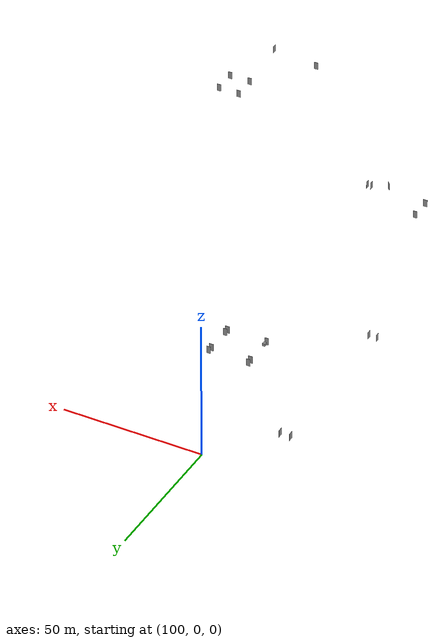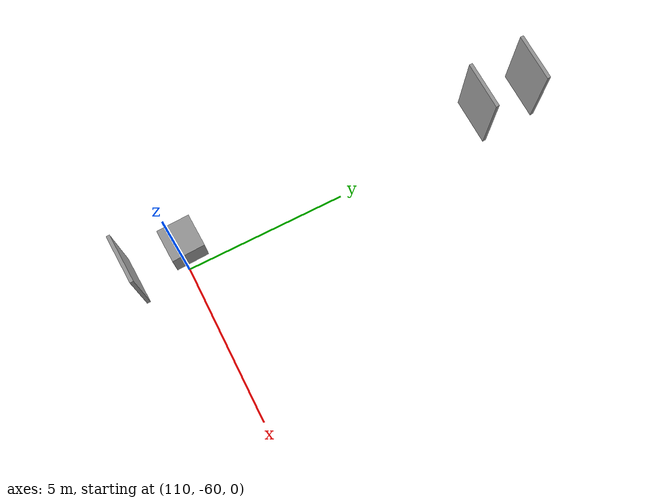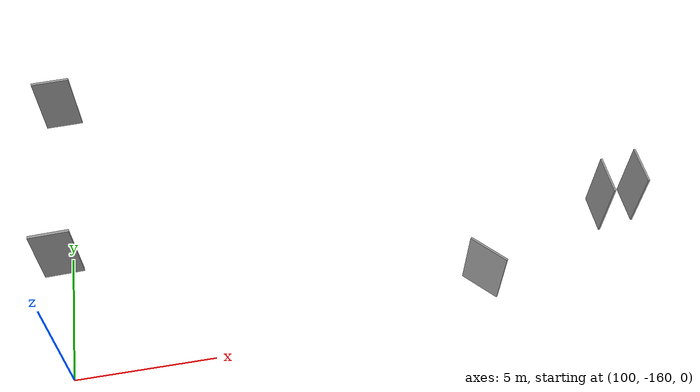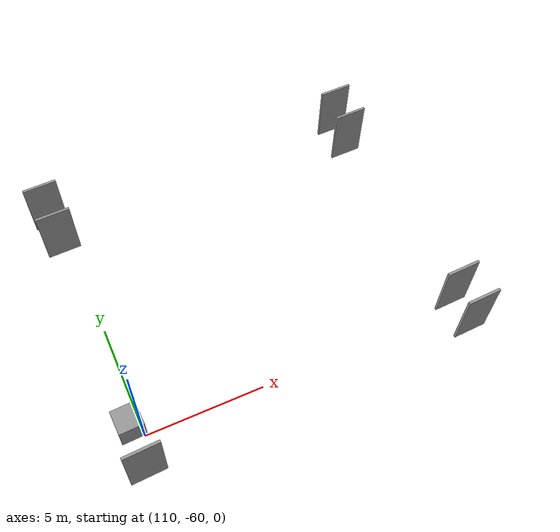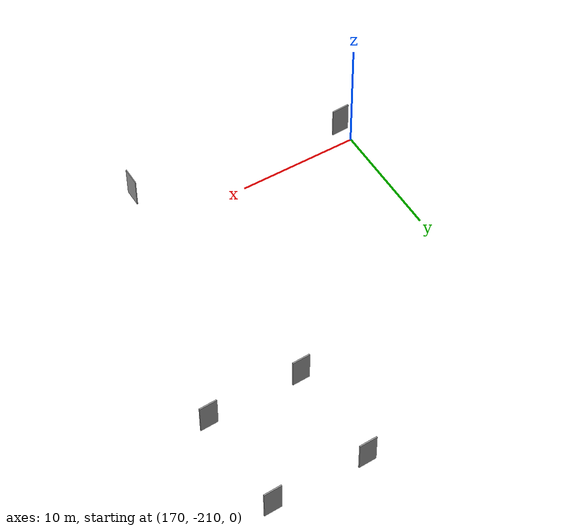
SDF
<sdf version="1.7">
 <world name="default">
  <plugin name="ros_interface_plugin" filename="librotors_gazebo_ros_interface_plugin.so"/>
  <light name="sun" type="directional">
   <pose>0 0 10 0 -0 0</pose>
   <diffuse>0.8 0.8 0.8 1</diffuse>
   <specular>0.2 0.2 0.2 1</specular>
   <attenuation>
    <range>1000</range>
    <constant>0.9</constant>
    <linear>0.01</linear>
    <quadratic>0.001</quadratic>
   </attenuation>
   <direction>-0.5 0.1 -0.9</direction>
   <spot><inner_angle>0</inner_angle><outer_angle>0</outer_angle><falloff>0</falloff></spot>
  </light>
  <spherical_coordinates>
   <surface_model>EARTH_WGS84</surface_model>
   <latitude_deg>47.3667</latitude_deg>
   <longitude_deg>8.55</longitude_deg>
   <elevation>500</elevation>
   <heading_deg>0</heading_deg>
  </spherical_coordinates>
  <physics type="ode">
   <ode>
    <solver>
     <type>quick</type>
     <iters>1000</iters>
     <sor>1.3</sor>
     <use_dynamic_moi_rescaling>0</use_dynamic_moi_rescaling>
    </solver>
    <constraints>
     <cfm>0</cfm>
     <erp>0.2</erp>
     <contact_max_correcting_vel>100</contact_max_correcting_vel>
     <contact_surface_layer>0.001</contact_surface_layer>
    </constraints>
   </ode>
   <max_step_size>0.005</max_step_size>
   <real_time_factor>1</real_time_factor>
   <real_time_update_rate>200</real_time_update_rate>
   <gravity>0 0 -9.8</gravity>
  </physics>
  <gravity>0 0 -9.8</gravity>
  <magnetic_field>6e-06 2.3e-05 -4.2e-05</magnetic_field>
  <atmosphere type="adiabatic"/>
  <scene><ambient>0.4 0.4 0.4 1</ambient><background>0.7 0.7 0.7 1</background><shadows>1</shadows></scene>
  <model name="unit_box_clone">
   <static>1</static>
   <pose>79.1075 -20.5241 1.29627 0 -0 0.01153</pose>
   <link name="link">
    <inertial>
     <mass>1</mass>
     <inertia>
      <ixx>0.166667</ixx>
      <ixy>0</ixy>
      <ixz>0</ixz>
      <iyy>0.166667</iyy>
      <iyz>0</iyz>
      <izz>0.166667</izz>
     </inertia>
    </inertial>
    <collision name="collision"><geometry><box><size>0.094065 2.00749 2.60868</size></box></geometry></collision>
    <visual name="visual">
     <geometry><box><size>0.094065 2.00749 2.60868</size></box></geometry>
     <material>
      <script><name>Gazebo/Grey</name><uri>file://media/materials/scripts/gazebo.material</uri></script>
     </material>
    </visual>
   </link>
  </model>
  <model name="unit_box_0_clone">
   <static>1</static>
   <pose>79.1307 -80.4884 1.2892 0 -0 0.003488</pose>
   <link name="link">
    <inertial>
     <mass>1</mass>
     <inertia>
      <ixx>0.166667</ixx>
      <ixy>0</ixy>
      <ixz>0</ixz>
      <iyy>0.166667</iyy>
      <iyz>0</iyz>
      <izz>0.166667</izz>
     </inertia>
    </inertial>
    <collision name="collision"><geometry><box><size>0.074842 1.51178 2.59455</size></box></geometry></collision>
    <visual name="visual">
     <geometry><box><size>0.074842 1.51178 2.59455</size></box></geometry>
     <material>
      <script><name>Gazebo/Grey</name><uri>file://media/materials/scripts/gazebo.material</uri></script>
     </material>
    </visual>
   </link>
  </model>
  <model name="unit_box_clone_clone">
   <static>1</static>
   <pose>82.9069 -20.5235 1.29627 0 -0 0.034755</pose>
   <link name="link">
    <inertial>
     <mass>1</mass>
     <inertia>
      <ixx>0.166667</ixx>
      <ixy>0</ixy>
      <ixz>0</ixz>
      <iyy>0.166667</iyy>
      <iyz>0</iyz>
      <izz>0.166667</izz>
     </inertia>
    </inertial>
    <collision name="collision"><geometry><box><size>0.094065 2.00749 2.60868</size></box></geometry></collision>
    <visual name="visual">
     <geometry><box><size>0.094065 2.00749 2.60868</size></box></geometry>
     <material>
      <script><name>Gazebo/Grey</name><uri>file://media/materials/scripts/gazebo.material</uri></script>
     </material>
    </visual>
   </link>
  </model>
  <model name="unit_box_0_clone_clone">
   <static>1</static>
   <pose>82.1922 -80.4853 1.28925 0 0.001222 -0.002902</pose>
   <link name="link">
    <inertial>
     <mass>1</mass>
     <inertia>
      <ixx>0.166667</ixx>
      <ixy>0</ixy>
      <ixz>0</ixz>
      <iyy>0.166667</iyy>
      <iyz>0</iyz>
      <izz>0.166667</izz>
     </inertia>
    </inertial>
    <collision name="collision"><geometry><box><size>0.074842 1.51178 2.59455</size></box></geometry></collision>
    <visual name="visual">
     <geometry><box><size>0.074842 1.51178 2.59455</size></box></geometry>
     <material>
      <script><name>Gazebo/Grey</name><uri>file://media/materials/scripts/gazebo.material</uri></script>
     </material>
    </visual>
   </link>
  </model>
  <model name="unit_box_0">
   <static>1</static>
   <pose>109.58 -59.8233 1.33703 8.4e-05 -0.000111 0.036381</pose>
   <link name="link">
    <inertial>
     <mass>1</mass>
     <inertia>
      <ixx>0.166667</ixx>
      <ixy>0</ixy>
      <ixz>0</ixz>
      <iyy>0.166667</iyy>
      <iyz>0</iyz>
      <izz>0.166667</izz>
     </inertia>
    </inertial>
    <collision name="collision"><geometry><box><size>1 1 1</size></box></geometry></collision>
    <visual name="visual">
     <geometry><box><size>1 1 1</size></box></geometry>
     <material>
      <script><name>Gazebo/Grey</name><uri>file://media/materials/scripts/gazebo.material</uri></script>
     </material>
    </visual>
   </link>
  </model>
  <model name="unit_box_0_clone_0">
   <static>1</static>
   <pose>109.63 -61.5144 1.33689 -5e-06 -0.000123 0.037531</pose>
   <link name="link">
    <inertial>
     <mass>1</mass>
     <inertia>
      <ixx>0.166667</ixx>
      <ixy>0</ixy>
      <ixz>0</ixz>
      <iyy>0.166667</iyy>
      <iyz>0</iyz>
      <izz>0.166667</izz>
     </inertia>
    </inertial>
    <collision name="collision"><geometry><box><size>1.47196 0.107378 2.69003</size></box></geometry></collision>
    <visual name="visual">
     <geometry><box><size>1.47196 0.107378 2.69003</size></box></geometry>
     <material>
      <script><name>Gazebo/Grey</name><uri>file://media/materials/scripts/gazebo.material</uri></script>
     </material>
    </visual>
   </link>
  </model>
  <model name="unit_box_0_clone_1">
   <static>1</static>
   <pose>109.654 -50.3071 1.33701 -0.001791 4.9e-05 0.037842</pose>
   <link name="link">
    <inertial>
     <mass>1</mass>
     <inertia>
      <ixx>0.166667</ixx>
      <ixy>0</ixy>
      <ixz>0</ixz>
      <iyy>0.166667</iyy>
      <iyz>0</iyz>
      <izz>0.166667</izz>
     </inertia>
    </inertial>
    <collision name="collision"><geometry><box><size>1.47196 0.107378 2.69003</size></box></geometry></collision>
    <visual name="visual">
     <geometry><box><size>1.47196 0.107378 2.69003</size></box></geometry>
     <material>
      <script><name>Gazebo/Grey</name><uri>file://media/materials/scripts/gazebo.material</uri></script>
     </material>
    </visual>
   </link>
  </model>
  <model name="unit_box_0_clone_2">
   <static>1</static>
   <pose>109.557 -48.586 1.33704 8.4e-05 -0.000111 0.036381</pose>
   <link name="link">
    <inertial>
     <mass>1</mass>
     <inertia>
      <ixx>0.166667</ixx>
      <ixy>0</ixy>
      <ixz>0</ixz>
      <iyy>0.166667</iyy>
      <iyz>0</iyz>
      <izz>0.166667</izz>
     </inertia>
    </inertial>
    <collision name="collision"><geometry><box><size>1.47196 0.107378 2.69003</size></box></geometry></collision>
    <visual name="visual">
     <geometry><box><size>1.47196 0.107378 2.69003</size></box></geometry>
     <material>
      <script><name>Gazebo/Grey</name><uri>file://media/materials/scripts/gazebo.material</uri></script>
     </material>
    </visual>
   </link>
  </model>
  <model name="unit_box_0_clone_3">
   <static>1</static>
   <pose>124.013 -48.5711 1.33703 8.4e-05 -0.000111 0.036381</pose>
   <link name="link">
    <inertial>
     <mass>1</mass>
     <inertia>
      <ixx>0.166667</ixx>
      <ixy>0</ixy>
      <ixz>0</ixz>
      <iyy>0.166667</iyy>
      <iyz>0</iyz>
      <izz>0.166667</izz>
     </inertia>
    </inertial>
    <collision name="collision"><geometry><box><size>1.47196 0.107378 2.69003</size></box></geometry></collision>
    <visual name="visual">
     <geometry><box><size>1.47196 0.107378 2.69003</size></box></geometry>
     <material>
      <script><name>Gazebo/Grey</name><uri>file://media/materials/scripts/gazebo.material</uri></script>
     </material>
    </visual>
   </link>
  </model>
  <model name="unit_box_0_clone_4">
   <static>1</static>
   <pose>123.918 -50.227 1.33703 8.4e-05 -0.000111 0.036381</pose>
   <link name="link">
    <inertial>
     <mass>1</mass>
     <inertia>
      <ixx>0.166667</ixx>
      <ixy>0</ixy>
      <ixz>0</ixz>
      <iyy>0.166667</iyy>
      <iyz>0</iyz>
      <izz>0.166667</izz>
     </inertia>
    </inertial>
    <collision name="collision"><geometry><box><size>1.47196 0.107378 2.69003</size></box></geometry></collision>
    <visual name="visual">
     <geometry><box><size>1.47196 0.107378 2.69003</size></box></geometry>
     <material>
      <script><name>Gazebo/Grey</name><uri>file://media/materials/scripts/gazebo.material</uri></script>
     </material>
    </visual>
   </link>
  </model>
  <model name="unit_box_0_clone_5">
   <static>1</static>
   <pose>123.93 -59.7148 1.33703 8.4e-05 -0.000111 0.036381</pose>
   <link name="link">
    <inertial>
     <mass>1</mass>
     <inertia>
      <ixx>0.166667</ixx>
      <ixy>0</ixy>
      <ixz>0</ixz>
      <iyy>0.166667</iyy>
      <iyz>0</iyz>
      <izz>0.166667</izz>
     </inertia>
    </inertial>
    <collision name="collision"><geometry><box><size>1.47196 0.107378 2.69003</size></box></geometry></collision>
    <visual name="visual">
     <geometry><box><size>1.47196 0.107378 2.69003</size></box></geometry>
     <material>
      <script><name>Gazebo/Grey</name><uri>file://media/materials/scripts/gazebo.material</uri></script>
     </material>
    </visual>
   </link>
  </model>
  <model name="unit_box_0_clone_6">
   <static>1</static>
   <pose>123.94 -61.1728 1.33703 8.4e-05 -0.000111 0.036381</pose>
   <link name="link">
    <inertial>
     <mass>1</mass>
     <inertia>
      <ixx>0.166667</ixx>
      <ixy>0</ixy>
      <ixz>0</ixz>
      <iyy>0.166667</iyy>
      <iyz>0</iyz>
      <izz>0.166667</izz>
     </inertia>
    </inertial>
    <collision name="collision"><geometry><box><size>1.47196 0.107378 2.69003</size></box></geometry></collision>
    <visual name="visual">
     <geometry><box><size>1.47196 0.107378 2.69003</size></box></geometry>
     <material>
      <script><name>Gazebo/Grey</name><uri>file://media/materials/scripts/gazebo.material</uri></script>
     </material>
    </visual>
   </link>
  </model>
  <model name="unit_box_0_clone_7">
   <static>1</static>
   <pose>170.246 -211.284 1.33703 8.4e-05 -0.000111 0.036381</pose>
   <link name="link">
    <inertial>
     <mass>1</mass>
     <inertia>
      <ixx>0.166667</ixx>
      <ixy>0</ixy>
      <ixz>0</ixz>
      <iyy>0.166667</iyy>
      <iyz>0</iyz>
      <izz>0.166667</izz>
     </inertia>
    </inertial>
    <collision name="collision"><geometry><box><size>1.47196 0.107378 2.69003</size></box></geometry></collision>
    <visual name="visual">
     <geometry><box><size>1.47196 0.107378 2.69003</size></box></geometry>
     <material>
      <script><name>Gazebo/Grey</name><uri>file://media/materials/scripts/gazebo.material</uri></script>
     </material>
    </visual>
   </link>
  </model>
  <model name="unit_box_0_clone_8">
   <static>1</static>
   <pose>185.883 -191.97 1.33703 8.4e-05 -0.000111 0.036381</pose>
   <link name="link">
    <inertial>
     <mass>1</mass>
     <inertia>
      <ixx>0.166667</ixx>
      <ixy>0</ixy>
      <ixz>0</ixz>
      <iyy>0.166667</iyy>
      <iyz>0</iyz>
      <izz>0.166667</izz>
     </inertia>
    </inertial>
    <collision name="collision"><geometry><box><size>1.47196 0.107378 2.69003</size></box></geometry></collision>
    <visual name="visual">
     <geometry><box><size>1.47196 0.107378 2.69003</size></box></geometry>
     <material>
      <script><name>Gazebo/Grey</name><uri>file://media/materials/scripts/gazebo.material</uri></script>
     </material>
    </visual>
   </link>
  </model>
  <model name="unit_box_0_clone_9">
   <static>1</static>
   <pose>193.587 -192.04 1.33703 8.4e-05 -0.000111 0.036381</pose>
   <link name="link">
    <inertial>
     <mass>1</mass>
     <inertia>
      <ixx>0.166667</ixx>
      <ixy>0</ixy>
      <ixz>0</ixz>
      <iyy>0.166667</iyy>
      <iyz>0</iyz>
      <izz>0.166667</izz>
     </inertia>
    </inertial>
    <collision name="collision"><geometry><box><size>1.47196 0.107378 2.69003</size></box></geometry></collision>
    <visual name="visual">
     <geometry><box><size>1.47196 0.107378 2.69003</size></box></geometry>
     <material>
      <script><name>Gazebo/Grey</name><uri>file://media/materials/scripts/gazebo.material</uri></script>
     </material>
    </visual>
   </link>
  </model>
  <model name="unit_box_0_clone_10">
   <static>1</static>
   <pose>193.346 -183.593 1.33703 8.4e-05 -0.000111 0.036381</pose>
   <link name="link">
    <inertial>
     <mass>1</mass>
     <inertia>
      <ixx>0.166667</ixx>
      <ixy>0</ixy>
      <ixz>0</ixz>
      <iyy>0.166667</iyy>
      <iyz>0</iyz>
      <izz>0.166667</izz>
     </inertia>
    </inertial>
    <collision name="collision"><geometry><box><size>1.47196 0.107378 2.69003</size></box></geometry></collision>
    <visual name="visual">
     <geometry><box><size>1.47196 0.107378 2.69003</size></box></geometry>
     <material>
      <script><name>Gazebo/Grey</name><uri>file://media/materials/scripts/gazebo.material</uri></script>
     </material>
    </visual>
   </link>
  </model>
  <model name="unit_box_0_clone_11">
   <static>1</static>
   <pose>185.614 -183.477 1.33703 8.4e-05 -0.000111 0.036381</pose>
   <link name="link">
    <inertial>
     <mass>1</mass>
     <inertia>
      <ixx>0.166667</ixx>
      <ixy>0</ixy>
      <ixz>0</ixz>
      <iyy>0.166667</iyy>
      <iyz>0</iyz>
      <izz>0.166667</izz>
     </inertia>
    </inertial>
    <collision name="collision"><geometry><box><size>1.47196 0.107378 2.69003</size></box></geometry></collision>
    <visual name="visual">
     <geometry><box><size>1.47196 0.107378 2.69003</size></box></geometry>
     <material>
      <script><name>Gazebo/Grey</name><uri>file://media/materials/scripts/gazebo.material</uri></script>
     </material>
    </visual>
   </link>
  </model>
  <model name="unit_box_0_clone_12">
   <static>1</static>
   <pose>99.6688 -155.495 1.33703 8.4e-05 -0.000111 0.036381</pose>
   <link name="link">
    <inertial>
     <mass>1</mass>
     <inertia>
      <ixx>0.166667</ixx>
      <ixy>0</ixy>
      <ixz>0</ixz>
      <iyy>0.166667</iyy>
      <iyz>0</iyz>
      <izz>0.166667</izz>
     </inertia>
    </inertial>
    <collision name="collision"><geometry><box><size>1.47196 0.107378 2.69003</size></box></geometry></collision>
    <visual name="visual">
     <geometry><box><size>1.47196 0.107378 2.69003</size></box></geometry>
     <material>
      <script><name>Gazebo/Grey</name><uri>file://media/materials/scripts/gazebo.material</uri></script>
     </material>
    </visual>
   </link>
  </model>
  <model name="unit_box_0_clone_13">
   <static>1</static>
   <pose>99.6525 -148.039 1.33703 8.4e-05 -0.000111 0.036381</pose>
   <link name="link">
    <inertial>
     <mass>1</mass>
     <inertia>
      <ixx>0.166667</ixx>
      <ixy>0</ixy>
      <ixz>0</ixz>
      <iyy>0.166667</iyy>
      <iyz>0</iyz>
      <izz>0.166667</izz>
     </inertia>
    </inertial>
    <collision name="collision"><geometry><box><size>1.47196 0.107378 2.69003</size></box></geometry></collision>
    <visual name="visual">
     <geometry><box><size>1.47196 0.107378 2.69003</size></box></geometry>
     <material>
      <script><name>Gazebo/Grey</name><uri>file://media/materials/scripts/gazebo.material</uri></script>
     </material>
    </visual>
   </link>
  </model>
  <model name="unit_box_0_clone_clone_clone">
   <static>1</static>
   <pose>120.323 -156.333 1.28925 0 0.001222 -0.002902</pose>
   <link name="link">
    <inertial>
     <mass>1</mass>
     <inertia>
      <ixx>0.166667</ixx>
      <ixy>0</ixy>
      <ixz>0</ixz>
      <iyy>0.166667</iyy>
      <iyz>0</iyz>
      <izz>0.166667</izz>
     </inertia>
    </inertial>
    <collision name="collision"><geometry><box><size>0.074842 1.51178 2.59455</size></box></geometry></collision>
    <visual name="visual">
     <geometry><box><size>0.074842 1.51178 2.59455</size></box></geometry>
     <material>
      <script><name>Gazebo/Grey</name><uri>file://media/materials/scripts/gazebo.material</uri></script>
     </material>
    </visual>
   </link>
  </model>
  <model name="unit_box_0_clone_clone_clone_0">
   <static>1</static>
   <pose>121.731 -156.101 1.28925 0 0.001222 -0.002902</pose>
   <link name="link">
    <inertial>
     <mass>1</mass>
     <inertia>
      <ixx>0.166667</ixx>
      <ixy>0</ixy>
      <ixz>0</ixz>
      <iyy>0.166667</iyy>
      <iyz>0</iyz>
      <izz>0.166667</izz>
     </inertia>
    </inertial>
    <collision name="collision"><geometry><box><size>0.074842 1.51178 2.59455</size></box></geometry></collision>
    <visual name="visual">
     <geometry><box><size>0.074842 1.51178 2.59455</size></box></geometry>
     <material>
      <script><name>Gazebo/Grey</name><uri>file://media/materials/scripts/gazebo.material</uri></script>
     </material>
    </visual>
   </link>
  </model>
  <model name="unit_box_0_clone_clone_clone_1">
   <static>1</static>
   <pose>115.03 -158.74 1.28915 0.000827 0.0009 0.740306</pose>
   <link name="link">
    <inertial>
     <mass>1</mass>
     <inertia>
      <ixx>0.166667</ixx>
      <ixy>0</ixy>
      <ixz>0</ixz>
      <iyy>0.166667</iyy>
      <iyz>0</iyz>
      <izz>0.166667</izz>
     </inertia>
    </inertial>
    <collision name="collision"><geometry><box><size>0.074842 1.51178 2.59455</size></box></geometry></collision>
    <visual name="visual">
     <geometry><box><size>0.074842 1.51178 2.59455</size></box></geometry>
     <material>
      <script><name>Gazebo/Grey</name><uri>file://media/materials/scripts/gazebo.material</uri></script>
     </material>
    </visual>
   </link>
  </model>
  <model name="unit_box_0_clone_clone_clone_2">
   <static>1</static>
   <pose>187.964 -213.83 1.28925 0 0.001222 -0.002902</pose>
   <link name="link">
    <inertial>
     <mass>1</mass>
     <inertia>
      <ixx>0.166667</ixx>
      <ixy>0</ixy>
      <ixz>0</ixz>
      <iyy>0.166667</iyy>
      <iyz>0</iyz>
      <izz>0.166667</izz>
     </inertia>
    </inertial>
    <collision name="collision"><geometry><box><size>0.074842 1.51178 2.59455</size></box></geometry></collision>
    <visual name="visual">
     <geometry><box><size>0.074842 1.51178 2.59455</size></box></geometry>
     <material>
      <script><name>Gazebo/Grey</name><uri>file://media/materials/scripts/gazebo.material</uri></script>
     </material>
    </visual>
   </link>
  </model>
 </world>
</sdf>
